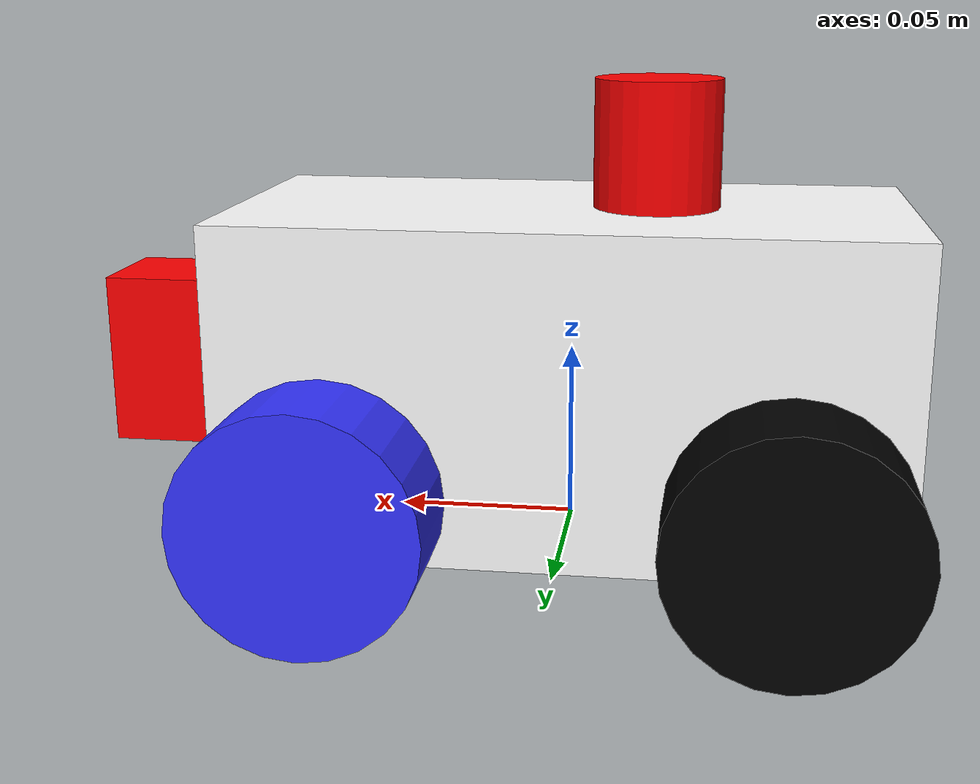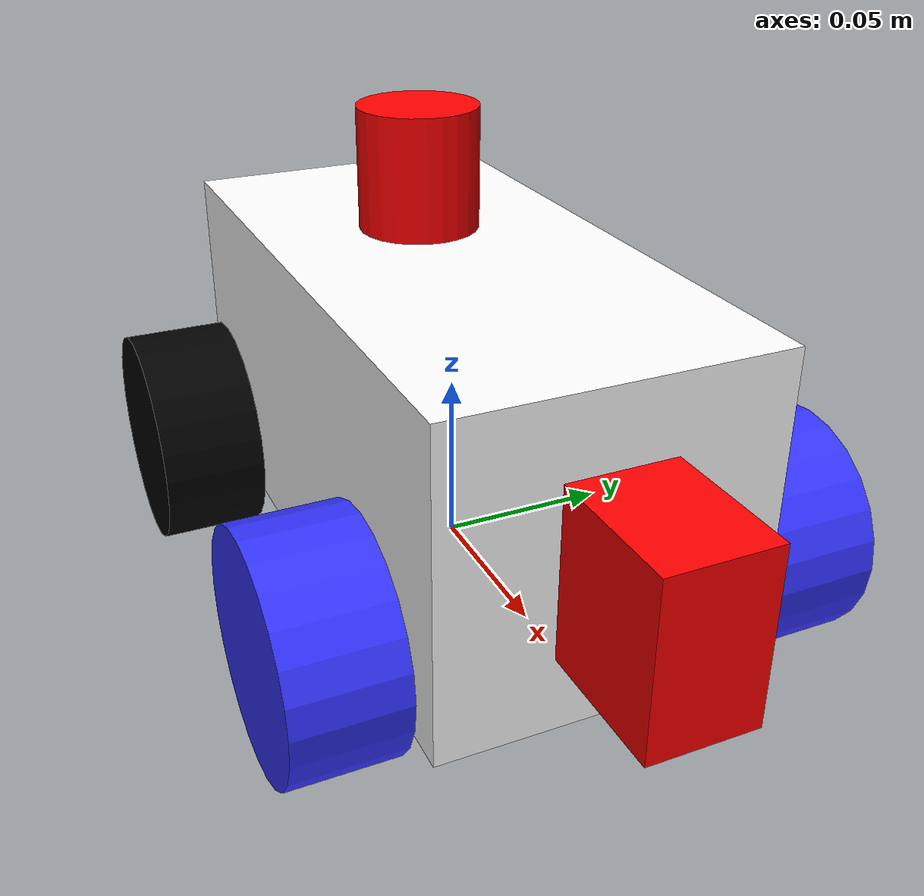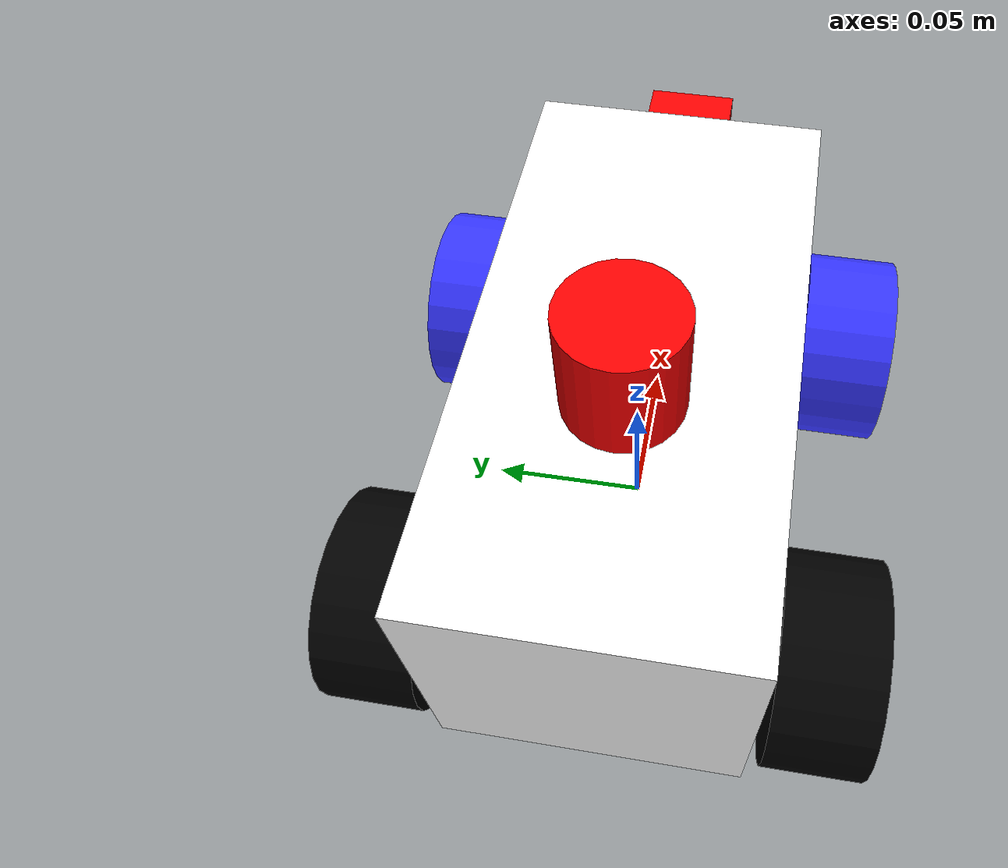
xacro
<?xml version="1.0"?>
<robot xmlns:xacro="http://www.ros.org/wiki/xacro"  name="robot">

    <xacro:include filename="robot_core.xacro" />
    <xacro:include filename="lidar.xacro"/>
    <xacro:include filename="depth_camera.xacro"/>
</robot>

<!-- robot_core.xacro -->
<robot xmlns:xacro="http://www.ros.org/wiki/xacro" >

    <xacro:include filename="inertial_macros.xacro"/>
    <xacro:include filename="robot_params.xacro"/>
    <xacro:materials/>

    <!-- BASE LINK -->
    <link name="base_link"/>

    <!-- CHASSIS -->
    <joint name="chassis_joint" type="fixed">
        <parent link="base_link"/>
        <child link="chassis"/>
        <origin xyz="0 0 0"/>
    </joint>

    <link name="chassis">
        <visual>
            <origin xyz="${chassis_origin_x} ${chassis_origin_y} ${chassis_origin_z}"/>
            <geometry>
                <box size="${chassis_length} ${chassis_width} ${chassis_height}"/>
            </geometry>
            <material name="white"/>
        </visual>
        <collision>
            <origin xyz="${chassis_origin_x} ${chassis_origin_y} ${chassis_origin_z}"/>
            <geometry>
                <box size="${chassis_length} ${chassis_width} ${chassis_height}"/>
            </geometry>
        </collision>
        <xacro:inertial_box mass="${chassis_mass}" x="${chassis_length}" y="${chassis_width}" z="${chassis_height}">
            <origin xyz="${chassis_origin_x} ${chassis_origin_y} ${chassis_origin_z}" rpy="0 0 0"/>
        </xacro:inertial_box>
    </link>

    <!-- LEFT FRONT WHEEL -->
    <joint name="left_front_wheel_joint" type="continuous">
        <parent link="base_link"/>
        <child link="left_front_wheel"/>
        <origin xyz="${wheel_x_offset} ${wheel_y_offset} ${wheel_z_offset}" rpy="-${pi/2} 0 0"/>
        <axis xyz="0 0 1"/>

        <limit effort="${wheel_effort}" velocity="${wheel_velocity}"/>
        <dynamics damping="${wheel_damping}" friction="${wheel_friction}"/>
    </joint>

    <link name="left_front_wheel">
        <visual>
            <geometry>
                <cylinder radius="${wheel_radius}" length="${wheel_length}"/>
            </geometry>
            <material name="blue"/>
        </visual>
        <collision>
            <geometry>
                <cylinder radius="${wheel_radius}" length="${wheel_length}"/>
            </geometry>
        </collision>
        <xacro:inertial_cylinder mass="${wheel_mass}" length="${wheel_length}" radius="${wheel_radius}">
            <origin xyz="0 0 0" rpy="0 0 0"/>
        </xacro:inertial_cylinder>
    </link>

    <!-- RIGHT FRONT WHEEL -->
    <joint name="right_front_wheel_joint" type="continuous">
        <parent link="base_link"/>
        <child link="right_front_wheel"/>
        <origin xyz="${wheel_x_offset} -${wheel_y_offset} ${wheel_z_offset}" rpy="-${pi/2} 0 0"/>
        <axis xyz="0 0 1"/>

        <limit effort="${wheel_effort}" velocity="${wheel_velocity}"/>
        <dynamics damping="${wheel_damping}" friction="${wheel_friction}"/>
    </joint>

    <link name="right_front_wheel">
        <visual>
            <geometry>
                <cylinder radius="${wheel_radius}" length="${wheel_length}"/>
            </geometry>
            <material name="blue"/>
        </visual>
        <collision>
            <geometry>
                <cylinder radius="${wheel_radius}" length="${wheel_length}"/>
            </geometry>
        </collision>
        <xacro:inertial_cylinder mass="${wheel_mass}" length="${wheel_length}" radius="${wheel_radius}">
            <origin xyz="0 0 0" rpy="0 0 0"/>
        </xacro:inertial_cylinder>
    </link>

    <!-- LEFT REAR WHEEL -->
    <joint name="left_rear_wheel_joint" type="continuous">
        <parent link="base_link"/>
        <child link="left_rear_wheel"/>
        <origin xyz="-${wheel_x_offset} ${wheel_y_offset} ${wheel_z_offset}" rpy="-${pi/2} 0 0"/>
        <axis xyz="0 0 1"/>

        <limit effort="${wheel_effort}" velocity="${wheel_velocity}"/>
        <dynamics damping="${wheel_damping}" friction="${wheel_friction}"/>
    </joint>

    <link name="left_rear_wheel">
        <visual>
            <geometry>
                <cylinder radius="${wheel_radius}" length="${wheel_length}"/>
            </geometry>
            <material name="black"/>
        </visual>
        <collision>
            <geometry>
                <cylinder radius="${wheel_radius}" length="${wheel_length}"/>
            </geometry>
        </collision>
        <xacro:inertial_cylinder mass="${wheel_mass}" length="${wheel_length}" radius="${wheel_radius}">
            <origin xyz="0 0 0" rpy="0 0 0"/>
        </xacro:inertial_cylinder>
    </link>

    <!-- RIGHT REAR WHEEL -->
    <joint name="right_rear_wheel_joint" type="continuous">
        <parent link="base_link"/>
        <child link="right_rear_wheel"/>
        <origin xyz="-${wheel_x_offset} -${wheel_y_offset} ${wheel_z_offset}" rpy="-${pi/2} 0 0"/>
        <axis xyz="0 0 1"/>

        <limit effort="${wheel_effort}" velocity="${wheel_velocity}"/>
        <dynamics damping="${wheel_damping}" friction="${wheel_friction}"/>
    </joint>

    <link name="right_rear_wheel">
        <visual>
            <geometry>
                <cylinder radius="${wheel_radius}" length="${wheel_length}"/>
            </geometry>
            <material name="black"/>
        </visual>
        <collision>
            <geometry>
                <cylinder radius="${wheel_radius}" length="${wheel_length}"/>
            </geometry>
        </collision>
        <xacro:inertial_cylinder mass="${wheel_mass}" length="${wheel_length}" radius="${wheel_radius}">
            <origin xyz="0 0 0" rpy="0 0 0"/>
        </xacro:inertial_cylinder>
    </link>

    <!-- GAZEBO MATERIALS -->
    <gazebo reference="chassis">
        <material>Gazebo/White</material>
        <mu1>1.0</mu1>
        <mu2>1.0</mu2>
    </gazebo>

    <gazebo reference="left_front_wheel">
        <material>Gazebo/Blue</material>
        <mu1>1.0</mu1>
        <mu2>1.0</mu2>
    </gazebo>

    <gazebo reference="right_front_wheel">
        <material>Gazebo/Blue</material>
        <mu1>1.0</mu1>
        <mu2>1.0</mu2>
    </gazebo>

    <gazebo reference="left_rear_wheel">
        <material>Gazebo/Black</material>
        <mu1>1.0</mu1>
        <mu2>1.0</mu2>
    </gazebo>

    <gazebo reference="right_rear_wheel">
        <material>Gazebo/Black</material>
        <mu1>1.0</mu1>
        <mu2>1.0</mu2>
    </gazebo>

    <gazebo reference="laser_frame">
        <material>Gazebo/Red</material>
    </gazebo>

    <gazebo reference="camera_link">
        <material>Gazebo/Red</material>
    </gazebo>

</robot>

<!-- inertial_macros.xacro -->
<robot xmlns:xacro="http://www.ros.org/wiki/xacro" >

    <!-- Specify some standard inertial calculations https://en.wikipedia.org/wiki/List_of_moments_of_inertia -->
    <!-- These make use of xacro's mathematical functionality -->

    <xacro:property name="chassis_x_dim" value="0.186"/>
    <xacro:property name="chassis_y_dim" value="0.093"/>
    <xacro:property name="chassis_z_dim" value="0.093"/>

    <xacro:macro name="inertial_box" params="mass x y z *origin">
        <inertial>
            <xacro:insert_block name="origin"/>
            <mass value="${mass}" />
            <inertia ixx="${(1/12) * mass * (y*y+z*z)}" ixy="0.0" ixz="0.0"
                    iyy="${(1/12) * mass * (x*x+z*z)}" iyz="0.0"
                    izz="${(1/12) * mass * (x*x+y*y)}" />
        </inertial>
    </xacro:macro>

    <xacro:macro name="inertial_cylinder" params="mass length radius *origin">
        <inertial>
            <xacro:insert_block name="origin"/>
            <mass value="${mass}" />
            <inertia ixx="${(1/12) * mass * (3*radius*radius + length*length)}" ixy="0.0" ixz="0.0"
                    iyy="${(1/12) * mass * (3*radius*radius + length*length)}" iyz="0.0"
                    izz="${(1/2) * mass * (radius*radius)}" />
        </inertial>
    </xacro:macro>

</robot>

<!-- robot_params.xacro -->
<robot xmlns:xacro="http://www.ros.org/wiki/xacro" >

    <!-- CONSTANTS -->
    <xacro:property name="wheel_space_to_chassis" value="0.004"/> <!-- Measured -->

    <!-- CHASSIS -->
    <xacro:property name="chassis_length" value="0.186"/> <!-- Measured -->
    <xacro:property name="chassis_width"  value="0.093"/> <!-- Measured -->
    <xacro:property name="chassis_height" value="0.091"/> <!-- Measured -->
    <xacro:property name="chassis_mass"   value="0.70"/>  <!-- Frame + battery (kg) -->

    <xacro:property name="chassis_origin_x" value="0"/>
    <xacro:property name="chassis_origin_y" value="0"/>
    <xacro:property name="chassis_origin_z" value="0.0455"/>

    <!-- WHEELS PARAMETERS -->
    <xacro:property name="wheel_radius" value="0.0325"/> <!-- Measured -->
    <xacro:property name="wheel_length" value="0.030"/>  <!-- Measured -->
    <xacro:property name="wheel_mass"   value="0.0375"/> <!-- Estimated -->

    <xacro:property name="wheel_effort"   value="1000"/>
    <xacro:property name="wheel_velocity" value="1000"/>
    <xacro:property name="wheel_damping"  value="0.5"/>
    <xacro:property name="wheel_friction" value="1.0"/>

    <!-- WHEEL GEOMETRY -->
    <xacro:property name="wheel_x_offset"   value="${(chassis_length / 2) - wheel_radius}"/> <!-- Made wheel flush with chassis -->
    <xacro:property name="wheel_y_offset"   value="${(chassis_width / 2) + (wheel_length / 2) + wheel_space_to_chassis}"/>
    <xacro:property name="wheel_z_offset"   value="0.02"/>
    <xacro:property name="wheel_diameter"   value="${wheel_radius * 2}"/>
    <xacro:property name="wheel_separation" value="${chassis_width + (wheel_length * 2) + (wheel_space_to_chassis * 2)}"/>

    <!-- LIDAR PARAMETERS -->
    <xacro:property name="lidar_radius" value="0.0175"/> <!-- Measured -->
    <xacro:property name="lidar_length" value="0.035"/>  <!-- Measured -->
    <xacro:property name="lidar_mass"   value="0.0375"/> <!-- Estimated -->

    <xacro:property name="lidar_origin_x" value="-0.023"/> <!-- Estimated -->
    <xacro:property name="lidar_origin_y" value="0"/>
    <xacro:property name="lidar_origin_z" value="${chassis_origin_z + chassis_height/2 + lidar_length/2}"/>

     <!-- CAMERA PARAMETERS -->
    <xacro:property name="camera_size_width"  value="0.048"/>  <!-- Measured -->
    <xacro:property name="camera_size_length" value="0.048"/>  <!-- Measured -->
    <xacro:property name="camera_size_depth"  value="0.03"/>   <!-- Measured -->
    <xacro:property name="camera_mass"        value="0.0375"/> <!-- Estimated -->

    <xacro:property name="camera_origin_x" value="${chassis_length/2 + camera_size_depth/2}"/>
    <xacro:property name="camera_origin_y" value="0"/>
    <xacro:property name="camera_origin_z" value="${chassis_height/2}"/>

    <!-- GAZEBO PLUGIN PARAMETERS -->
    <xacro:property name="gazebo_max_wheel_torque"       value="${wheel_effort}"/>
    <xacro:property name="gazebo_max_wheel_acceleration" value="5.0"/>
    <xacro:property name="gazebo_mu1"                    value="0.2"/>
    <xacro:property name="gazebo_mu2"                    value="0.2"/>

    <!-- COLORS -->
    <xacro:macro name="materials">
        <material name="white"><color rgba="1 1 1 1"/></material>
        <material name="orange"><color rgba="1 0.3 0.1 1"/></material>
        <material name="blue"><color rgba="0.2 0.2 1 1"/></material>
        <material name="black"><color rgba="0 0 0 1"/></material>
        <material name="red"><color rgba="1 0 0 1"/></material>
    </xacro:macro>

</robot>

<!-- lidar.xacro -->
<robot xmlns:xacro="http://www.ros.org/wiki/xacro" >

    <xacro:include filename="robot_params.xacro"/>

    <joint name="laser_joint" type="fixed">
        <parent link="chassis"/>
        <child link="base_laser"/>
        <origin xyz="${lidar_origin_x} ${lidar_origin_y} ${lidar_origin_z}" rpy="${pi} 0 ${pi/2}"/>
    </joint>

    <link name="base_laser">
        <visual>
            <geometry>
                <cylinder radius="${lidar_radius}" length="${lidar_length}"/>
            </geometry>
            <material name="red"/>
        </visual>
        <collision>
            <geometry>
                <cylinder radius="${lidar_radius}" length="${lidar_length}"/>
            </geometry>
        </collision>
        <xacro:inertial_cylinder mass="${lidar_mass}" length="${lidar_length}" radius="${lidar_radius}">
            <origin xyz="0 0 0" rpy="0 0 0"/>
        </xacro:inertial_cylinder>
    </link>

    <gazebo reference="base_laser">
        <sensor name="laser" type="ray">
            <pose> 0 0 0 0 0 0 </pose>
                <visualize>true</visualize> <!-- visualize points in gazebo -->
                <update_rate>10</update_rate> <!-- update sensor per second -->
                <ray>
                    <scan>
                        <horizontal>
                            <samples>360</samples>
                            <resolution>1</resolution>
                            <min_angle>-3.14</min_angle> <!-- neg 180° in radians -->
                            <max_angle>3.14</max_angle>  <!-- pos 180° in radians -->
                        </horizontal>
                    </scan>
                    <range>
                        <min>0.3</min>
                        <max>12</max>
                        <resolution>0.1</resolution>
                    </range>
                </ray>
                <plugin name="laser_controller" filename="libgazebo_ros_ray_sensor.so">
                    <ros>
                        <argument>~/out:=scan</argument>
                    </ros>
                    <output_type>sensor_msgs/LaserScan</output_type>
                    <frame_name>base_laser</frame_name>
                </plugin>
        </sensor>
    </gazebo>

</robot>

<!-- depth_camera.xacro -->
<robot xmlns:xacro="http://www.ros.org/wiki/xacro" >

    <xacro:include filename="robot_params.xacro"/>

    <joint name="camera_joint" type="fixed">
        <parent link="chassis"/>
        <child link="camera_link"/>
        <origin xyz="${camera_origin_x} ${camera_origin_y} ${camera_origin_z}" rpy="${pi/2} 0 ${pi/2}"/>
    </joint>

    <link name="camera_link">
        <visual>
            <geometry>
                <box size="${camera_size_depth} ${camera_size_width} ${camera_size_length}"/>
            </geometry>
            <material name="red"/>
        </visual>
        <collision>
            <geometry>
                <box size="${camera_size_depth} ${camera_size_width} ${camera_size_length}"/>
            </geometry>
        </collision>
        <xacro:inertial_box mass="${camera_mass}" x="${camera_size_depth}" y="${camera_size_width}" z="${camera_size_length}">
            <origin xyz="${camera_origin_x} ${camera_origin_y} ${camera_origin_z}" rpy="0 0 0"/>
        </xacro:inertial_box>
    </link>

    <joint name="camera_optical_joint" type="fixed">
        <parent link="camera_link"/>
        <child link="camera_link_optical"/>
        <origin xyz="0 0 0" rpy="-${pi/2} 0 -${pi/2}"/>
    </joint>

    <link name="camera_link_optical"></link>

    <gazebo reference="camera_link">
        <sensor name="camera" type="depth">
            <pose> 0 0 0 0 0 0 </pose>
                <visualize>true</visualize>
                <update_rate>10</update_rate>
                <camera>
                    <horizontal_fov>1.089</horizontal_fov> <!-- radians -->
                    <image>
                        <format>R8G8B8</format>
                        <width>640</width>
                        <height>480</height>
                    </image>
                    <clip>
                        <near>0.05</near> <!-- min distance camera can see -->
                        <far>8.0</far>    <!-- max distance camera can see -->
                    </clip>
                </camera>
                <plugin name="camera_controller" filename="libgazebo_ros_camera.so">
                    <frame_name>camera_link_optical</frame_name>
                    <min_depth>0.1</min_depth>
                    <max_depth>100</max_depth>
                </plugin>
        </sensor>
    </gazebo>

</robot>
